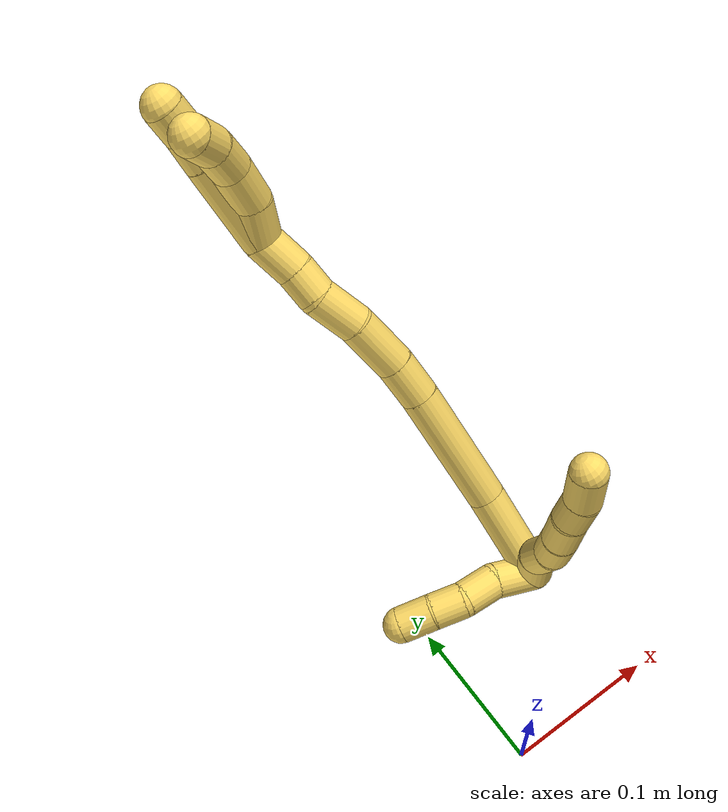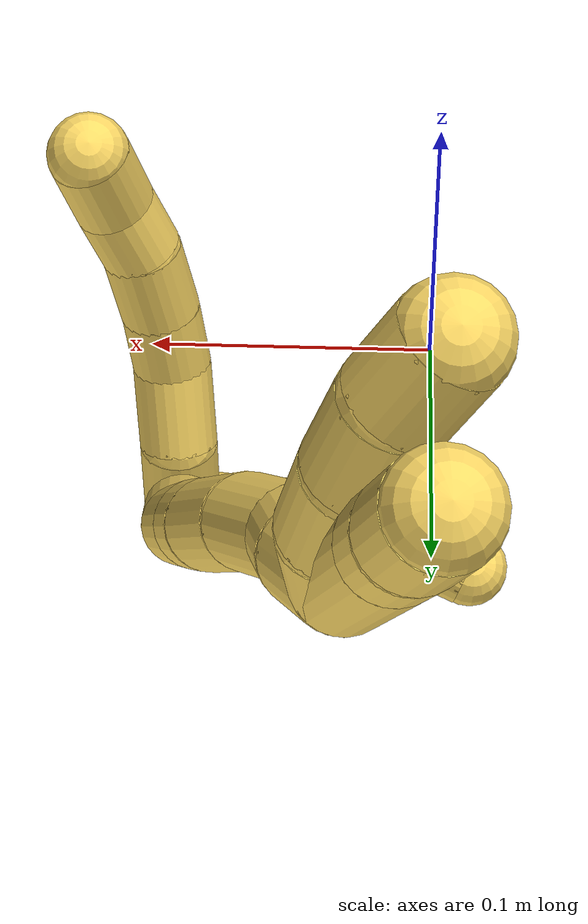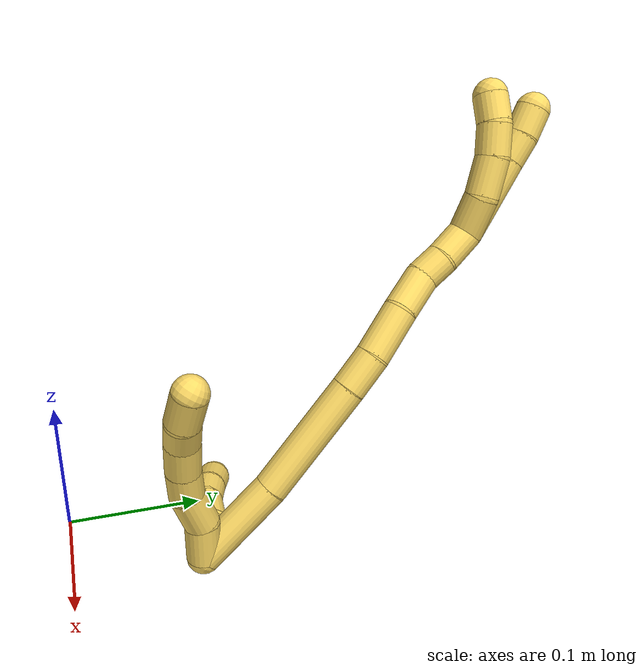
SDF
<sdf version="1.7">
 <world name="default">
  <model name="5">
   <static>0</static>
   <link name="5">
    <collision name="collision-cylinder-e_1_2_8">
     <pose>-0.001596 -0.008565 0.012021 0.619062 -0.107746 -0.034488</pose>
     <geometry><cylinder><radius>0.0125</radius><length>0.029692</length></cylinder></geometry>
     <surface>
      <friction><ode><mu>1.16</mu><mu2>1.16</mu2><slip1>0</slip1><slip2>0</slip2></ode></friction>
      <contact><ode><kp>1e+06</kp><kd>1</kd><max_vel>0</max_vel><min_depth>0.001</min_depth></ode></contact>
     </surface>
    </collision>
    <visual name="visual-cylinder-e_1_2_8">
     <pose>-0.001596 -0.008565 0.012021 0.619062 -0.107746 -0.034488</pose>
     <geometry><cylinder><radius>0.0125</radius><length>0.029692</length></cylinder></geometry>
     <material><ambient>1 0.858824 0.4 1</ambient></material>
    </visual>
    <collision name="collision-cylinder-e_2_8_9">
     <pose>-0.005509 -0.028623 0.032038 0.962921 -0.163912 -0.085779</pose>
     <geometry><cylinder><radius>0.0125</radius><length>0.028383</length></cylinder></geometry>
     <surface>
      <friction><ode><mu>1.16</mu><mu2>1.16</mu2><slip1>0</slip1><slip2>0</slip2></ode></friction>
      <contact><ode><kp>1e+06</kp><kd>1</kd><max_vel>0</max_vel><min_depth>0.001</min_depth></ode></contact>
     </surface>
    </collision>
    <visual name="visual-cylinder-e_2_8_9">
     <pose>-0.005509 -0.028623 0.032038 0.962921 -0.163912 -0.085779</pose>
     <geometry><cylinder><radius>0.0125</radius><length>0.028383</length></cylinder></geometry>
     <material><ambient>1 0.858824 0.4 1</ambient></material>
    </visual>
    <collision name="collision-cylinder-e_3_9_10">
     <pose>-0.007985 -0.047428 0.048331 0.722378 -0.014465 -0.005464</pose>
     <geometry><cylinder><radius>0.0125</radius><length>0.02212</length></cylinder></geometry>
     <surface>
      <friction><ode><mu>1.16</mu><mu2>1.16</mu2><slip1>0</slip1><slip2>0</slip2></ode></friction>
      <contact><ode><kp>1e+06</kp><kd>1</kd><max_vel>0</max_vel><min_depth>0.001</min_depth></ode></contact>
     </surface>
    </collision>
    <visual name="visual-cylinder-e_3_9_10">
     <pose>-0.007985 -0.047428 0.048331 0.722378 -0.014465 -0.005464</pose>
     <geometry><cylinder><radius>0.0125</radius><length>0.02212</length></cylinder></geometry>
     <material><ambient>1 0.858824 0.4 1</ambient></material>
    </visual>
    <collision name="collision-cylinder-e_4_10_11">
     <pose>-0.007289 -0.062668 0.066471 0.678105 0.067615 0.023854</pose>
     <geometry><cylinder><radius>0.0125</radius><length>0.025336</length></cylinder></geometry>
     <surface>
      <friction><ode><mu>1.16</mu><mu2>1.16</mu2><slip1>0</slip1><slip2>0</slip2></ode></friction>
      <contact><ode><kp>1e+06</kp><kd>1</kd><max_vel>0</max_vel><min_depth>0.001</min_depth></ode></contact>
     </surface>
    </collision>
    <visual name="visual-cylinder-e_4_10_11">
     <pose>-0.007289 -0.062668 0.066471 0.678105 0.067615 0.023854</pose>
     <geometry><cylinder><radius>0.0125</radius><length>0.025336</length></cylinder></geometry>
     <material><ambient>1 0.858824 0.4 1</ambient></material>
    </visual>
    <collision name="collision-cylinder-e_5_11_12">
     <pose>-0.004056 -0.077071 0.083575 0.728094 0.239629 0.091681</pose>
     <geometry><cylinder><radius>0.0125</radius><length>0.020029</length></cylinder></geometry>
     <surface>
      <friction><ode><mu>1.16</mu><mu2>1.16</mu2><slip1>0</slip1><slip2>0</slip2></ode></friction>
      <contact><ode><kp>1e+06</kp><kd>1</kd><max_vel>0</max_vel><min_depth>0.001</min_depth></ode></contact>
     </surface>
    </collision>
    <visual name="visual-cylinder-e_5_11_12">
     <pose>-0.004056 -0.077071 0.083575 0.728094 0.239629 0.091681</pose>
     <geometry><cylinder><radius>0.0125</radius><length>0.020029</length></cylinder></geometry>
     <material><ambient>1 0.858824 0.4 1</ambient></material>
    </visual>
    <collision name="collision-cylinder-e_6_12_6">
     <pose>0.000642 -0.089253 0.101389 0.495898 0.191106 0.048518</pose>
     <geometry><cylinder><radius>0.0125</radius><length>0.02444</length></cylinder></geometry>
     <surface>
      <friction><ode><mu>1.16</mu><mu2>1.16</mu2><slip1>0</slip1><slip2>0</slip2></ode></friction>
      <contact><ode><kp>1e+06</kp><kd>1</kd><max_vel>0</max_vel><min_depth>0.001</min_depth></ode></contact>
     </surface>
    </collision>
    <visual name="visual-cylinder-e_6_12_6">
     <pose>0.000642 -0.089253 0.101389 0.495898 0.191106 0.048518</pose>
     <geometry><cylinder><radius>0.0125</radius><length>0.02444</length></cylinder></geometry>
     <material><ambient>1 0.858824 0.4 1</ambient></material>
    </visual>
    <collision name="collision-cylinder-e_1_2_13">
     <pose>-0.011824 0.006546 0.006896 -0.759363 -0.893511 0.377774</pose>
     <geometry><cylinder><radius>0.0125</radius><length>0.030347</length></cylinder></geometry>
     <surface>
      <friction><ode><mu>1.16</mu><mu2>1.16</mu2><slip1>0</slip1><slip2>0</slip2></ode></friction>
      <contact><ode><kp>1e+06</kp><kd>1</kd><max_vel>0</max_vel><min_depth>0.001</min_depth></ode></contact>
     </surface>
    </collision>
    <visual name="visual-cylinder-e_1_2_13">
     <pose>-0.011824 0.006546 0.006896 -0.759363 -0.893511 0.377774</pose>
     <geometry><cylinder><radius>0.0125</radius><length>0.030347</length></cylinder></geometry>
     <material><ambient>1 0.858824 0.4 1</ambient></material>
    </visual>
    <collision name="collision-cylinder-e_2_13_14">
     <pose>-0.034966 0.017228 0.016246 -1.03524 -1.16908 0.720634</pose>
     <geometry><cylinder><radius>0.0125</radius><length>0.024592</length></cylinder></geometry>
     <surface>
      <friction><ode><mu>1.16</mu><mu2>1.16</mu2><slip1>0</slip1><slip2>0</slip2></ode></friction>
      <contact><ode><kp>1e+06</kp><kd>1</kd><max_vel>0</max_vel><min_depth>0.001</min_depth></ode></contact>
     </surface>
    </collision>
    <visual name="visual-cylinder-e_2_13_14">
     <pose>-0.034966 0.017228 0.016246 -1.03524 -1.16908 0.720634</pose>
     <geometry><cylinder><radius>0.0125</radius><length>0.024592</length></cylinder></geometry>
     <material><ambient>1 0.858824 0.4 1</ambient></material>
    </visual>
    <collision name="collision-cylinder-e_3_14_15">
     <pose>-0.054705 0.028094 0.02052 -1.30675 -0.879194 0.691159</pose>
     <geometry><cylinder><radius>0.0125</radius><length>0.021868</length></cylinder></geometry>
     <surface>
      <friction><ode><mu>1.16</mu><mu2>1.16</mu2><slip1>0</slip1><slip2>0</slip2></ode></friction>
      <contact><ode><kp>1e+06</kp><kd>1</kd><max_vel>0</max_vel><min_depth>0.001</min_depth></ode></contact>
     </surface>
    </collision>
    <visual name="visual-cylinder-e_3_14_15">
     <pose>-0.054705 0.028094 0.02052 -1.30675 -0.879194 0.691159</pose>
     <geometry><cylinder><radius>0.0125</radius><length>0.021868</length></cylinder></geometry>
     <material><ambient>1 0.858824 0.4 1</ambient></material>
    </visual>
    <collision name="collision-cylinder-e_4_15_5">
     <pose>-0.071422 0.042898 0.023045 -1.4837 -0.797183 0.736696</pose>
     <geometry><cylinder><radius>0.0125</radius><length>0.023193</length></cylinder></geometry>
     <surface>
      <friction><ode><mu>1.16</mu><mu2>1.16</mu2><slip1>0</slip1><slip2>0</slip2></ode></friction>
      <contact><ode><kp>1e+06</kp><kd>1</kd><max_vel>0</max_vel><min_depth>0.001</min_depth></ode></contact>
     </surface>
    </collision>
    <visual name="visual-cylinder-e_4_15_5">
     <pose>-0.071422 0.042898 0.023045 -1.4837 -0.797183 0.736696</pose>
     <geometry><cylinder><radius>0.0125</radius><length>0.023193</length></cylinder></geometry>
     <material><ambient>1 0.858824 0.4 1</ambient></material>
    </visual>
    <collision name="collision-cylinder-e_1_2_16">
     <pose>0.003896 0.006505 0.033113 -0.193965 0.114953 -0.011196</pose>
     <geometry><cylinder><radius>0.0125</radius><length>0.06794</length></cylinder></geometry>
     <surface>
      <friction><ode><mu>1.16</mu><mu2>1.16</mu2><slip1>0</slip1><slip2>0</slip2></ode></friction>
      <contact><ode><kp>1e+06</kp><kd>1</kd><max_vel>0</max_vel><min_depth>0.001</min_depth></ode></contact>
     </surface>
    </collision>
    <visual name="visual-cylinder-e_1_2_16">
     <pose>0.003896 0.006505 0.033113 -0.193965 0.114953 -0.011196</pose>
     <geometry><cylinder><radius>0.0125</radius><length>0.06794</length></cylinder></geometry>
     <material><ambient>1 0.858824 0.4 1</ambient></material>
    </visual>
    <collision name="collision-cylinder-e_2_16_17">
     <pose>0.009224 0.018414 0.110243 -0.122186 0.032269 -0.001974</pose>
     <geometry><cylinder><radius>0.0125</radius><length>0.08874</length></cylinder></geometry>
     <surface>
      <friction><ode><mu>1.16</mu><mu2>1.16</mu2><slip1>0</slip1><slip2>0</slip2></ode></friction>
      <contact><ode><kp>1e+06</kp><kd>1</kd><max_vel>0</max_vel><min_depth>0.001</min_depth></ode></contact>
     </surface>
    </collision>
    <visual name="visual-cylinder-e_2_16_17">
     <pose>0.009224 0.018414 0.110243 -0.122186 0.032269 -0.001974</pose>
     <geometry><cylinder><radius>0.0125</radius><length>0.08874</length></cylinder></geometry>
     <material><ambient>1 0.858824 0.4 1</ambient></material>
    </visual>
    <collision name="collision-cylinder-e_3_17_18">
     <pose>0.010401 0.02587 0.168322 -0.1448 -0.017921 0.0013</pose>
     <geometry><cylinder><radius>0.0125</radius><length>0.028428</length></cylinder></geometry>
     <surface>
      <friction><ode><mu>1.16</mu><mu2>1.16</mu2><slip1>0</slip1><slip2>0</slip2></ode></friction>
      <contact><ode><kp>1e+06</kp><kd>1</kd><max_vel>0</max_vel><min_depth>0.001</min_depth></ode></contact>
     </surface>
    </collision>
    <visual name="visual-cylinder-e_3_17_18">
     <pose>0.010401 0.02587 0.168322 -0.1448 -0.017921 0.0013</pose>
     <geometry><cylinder><radius>0.0125</radius><length>0.028428</length></cylinder></geometry>
     <material><ambient>1 0.858824 0.4 1</ambient></material>
    </visual>
    <collision name="collision-cylinder-e_4_18_19">
     <pose>0.007438 0.03092 0.200857 -0.160984 -0.143725 0.011614</pose>
     <geometry><cylinder><radius>0.0125</radius><length>0.037816</length></cylinder></geometry>
     <surface>
      <friction><ode><mu>1.16</mu><mu2>1.16</mu2><slip1>0</slip1><slip2>0</slip2></ode></friction>
      <contact><ode><kp>1e+06</kp><kd>1</kd><max_vel>0</max_vel><min_depth>0.001</min_depth></ode></contact>
     </surface>
    </collision>
    <visual name="visual-cylinder-e_4_18_19">
     <pose>0.007438 0.03092 0.200857 -0.160984 -0.143725 0.011614</pose>
     <geometry><cylinder><radius>0.0125</radius><length>0.037816</length></cylinder></geometry>
     <material><ambient>1 0.858824 0.4 1</ambient></material>
    </visual>
    <collision name="collision-cylinder-e_5_19_20">
     <pose>0.001291 0.038597 0.233291 -0.323241 -0.229447 0.03757</pose>
     <geometry><cylinder><radius>0.0125</radius><length>0.030244</length></cylinder></geometry>
     <surface>
      <friction><ode><mu>1.16</mu><mu2>1.16</mu2><slip1>0</slip1><slip2>0</slip2></ode></friction>
      <contact><ode><kp>1e+06</kp><kd>1</kd><max_vel>0</max_vel><min_depth>0.001</min_depth></ode></contact>
     </surface>
    </collision>
    <visual name="visual-cylinder-e_5_19_20">
     <pose>0.001291 0.038597 0.233291 -0.323241 -0.229447 0.03757</pose>
     <geometry><cylinder><radius>0.0125</radius><length>0.030244</length></cylinder></geometry>
     <material><ambient>1 0.858824 0.4 1</ambient></material>
    </visual>
    <collision name="collision-cylinder-e_6_20_21">
     <pose>-0.001536 0.046718 0.256766 -0.347358 0.06048 -0.010614</pose>
     <geometry><cylinder><radius>0.0125</radius><length>0.020268</length></cylinder></geometry>
     <surface>
      <friction><ode><mu>1.16</mu><mu2>1.16</mu2><slip1>0</slip1><slip2>0</slip2></ode></friction>
      <contact><ode><kp>1e+06</kp><kd>1</kd><max_vel>0</max_vel><min_depth>0.001</min_depth></ode></contact>
     </surface>
    </collision>
    <visual name="visual-cylinder-e_6_20_21">
     <pose>-0.001536 0.046718 0.256766 -0.347358 0.06048 -0.010614</pose>
     <geometry><cylinder><radius>0.0125</radius><length>0.020268</length></cylinder></geometry>
     <material><ambient>1 0.858824 0.4 1</ambient></material>
    </visual>
    <collision name="collision-cylinder-e_7_21_1">
     <pose>-0.002061 0.055041 0.278577 -0.377669 -0.085751 0.016398</pose>
     <geometry><cylinder><radius>0.0125</radius><length>0.026563</length></cylinder></geometry>
     <surface>
      <friction><ode><mu>1.16</mu><mu2>1.16</mu2><slip1>0</slip1><slip2>0</slip2></ode></friction>
      <contact><ode><kp>1e+06</kp><kd>1</kd><max_vel>0</max_vel><min_depth>0.001</min_depth></ode></contact>
     </surface>
    </collision>
    <visual name="visual-cylinder-e_7_21_1">
     <pose>-0.002061 0.055041 0.278577 -0.377669 -0.085751 0.016398</pose>
     <geometry><cylinder><radius>0.0125</radius><length>0.026563</length></cylinder></geometry>
     <material><ambient>1 0.858824 0.4 1</ambient></material>
    </visual>
    <collision name="collision-cylinder-e_1_1_22">
     <pose>-0.005117 0.060244 0.320455 -0.010923 -0.064754 0.000354</pose>
     <geometry><cylinder><radius>0.0125</radius><length>0.059285</length></cylinder></geometry>
     <surface>
      <friction><ode><mu>1.16</mu><mu2>1.16</mu2><slip1>0</slip1><slip2>0</slip2></ode></friction>
      <contact><ode><kp>1e+06</kp><kd>1</kd><max_vel>0</max_vel><min_depth>0.001</min_depth></ode></contact>
     </surface>
    </collision>
    <visual name="visual-cylinder-e_1_1_22">
     <pose>-0.005117 0.060244 0.320455 -0.010923 -0.064754 0.000354</pose>
     <geometry><cylinder><radius>0.0125</radius><length>0.059285</length></cylinder></geometry>
     <material><ambient>1 0.858824 0.4 1</ambient></material>
    </visual>
    <collision name="collision-cylinder-e_2_22_23">
     <pose>-0.00748 0.060728 0.360164 -0.015899 -0.043897 0.000349</pose>
     <geometry><cylinder><radius>0.0125</radius><length>0.020282</length></cylinder></geometry>
     <surface>
      <friction><ode><mu>1.16</mu><mu2>1.16</mu2><slip1>0</slip1><slip2>0</slip2></ode></friction>
      <contact><ode><kp>1e+06</kp><kd>1</kd><max_vel>0</max_vel><min_depth>0.001</min_depth></ode></contact>
     </surface>
    </collision>
    <visual name="visual-cylinder-e_2_22_23">
     <pose>-0.00748 0.060728 0.360164 -0.015899 -0.043897 0.000349</pose>
     <geometry><cylinder><radius>0.0125</radius><length>0.020282</length></cylinder></geometry>
     <material><ambient>1 0.858824 0.4 1</ambient></material>
    </visual>
    <collision name="collision-cylinder-e_3_23_4">
     <pose>-0.009533 0.060536 0.380377 0.034983 -0.158074 -0.002771</pose>
     <geometry><cylinder><radius>0.0125</radius><length>0.020433</length></cylinder></geometry>
     <surface>
      <friction><ode><mu>1.16</mu><mu2>1.16</mu2><slip1>0</slip1><slip2>0</slip2></ode></friction>
      <contact><ode><kp>1e+06</kp><kd>1</kd><max_vel>0</max_vel><min_depth>0.001</min_depth></ode></contact>
     </surface>
    </collision>
    <visual name="visual-cylinder-e_3_23_4">
     <pose>-0.009533 0.060536 0.380377 0.034983 -0.158074 -0.002771</pose>
     <geometry><cylinder><radius>0.0125</radius><length>0.020433</length></cylinder></geometry>
     <material><ambient>1 0.858824 0.4 1</ambient></material>
    </visual>
    <collision name="collision-cylinder-e_1_1_24">
     <pose>-0.002005 0.055248 0.304332 0.33429 0.083584 0.01411</pose>
     <geometry><cylinder><radius>0.0125</radius><length>0.028587</length></cylinder></geometry>
     <surface>
      <friction><ode><mu>1.16</mu><mu2>1.16</mu2><slip1>0</slip1><slip2>0</slip2></ode></friction>
      <contact><ode><kp>1e+06</kp><kd>1</kd><max_vel>0</max_vel><min_depth>0.001</min_depth></ode></contact>
     </surface>
    </collision>
    <visual name="visual-cylinder-e_1_1_24">
     <pose>-0.002005 0.055248 0.304332 0.33429 0.083584 0.01411</pose>
     <geometry><cylinder><radius>0.0125</radius><length>0.028587</length></cylinder></geometry>
     <material><ambient>1 0.858824 0.4 1</ambient></material>
    </visual>
    <collision name="collision-cylinder-e_2_24_25">
     <pose>-0.003378 0.047054 0.331204 0.256585 -0.182894 -0.023658</pose>
     <geometry><cylinder><radius>0.0125</radius><length>0.028213</length></cylinder></geometry>
     <surface>
      <friction><ode><mu>1.16</mu><mu2>1.16</mu2><slip1>0</slip1><slip2>0</slip2></ode></friction>
      <contact><ode><kp>1e+06</kp><kd>1</kd><max_vel>0</max_vel><min_depth>0.001</min_depth></ode></contact>
     </surface>
    </collision>
    <visual name="visual-cylinder-e_2_24_25">
     <pose>-0.003378 0.047054 0.331204 0.256585 -0.182894 -0.023658</pose>
     <geometry><cylinder><radius>0.0125</radius><length>0.028213</length></cylinder></geometry>
     <material><ambient>1 0.858824 0.4 1</ambient></material>
    </visual>
    <collision name="collision-cylinder-e_3_25_26">
     <pose>-0.009953 0.039586 0.354682 0.373954 -0.35526 -0.0679</pose>
     <geometry><cylinder><radius>0.0125</radius><length>0.023055</length></cylinder></geometry>
     <surface>
      <friction><ode><mu>1.16</mu><mu2>1.16</mu2><slip1>0</slip1><slip2>0</slip2></ode></friction>
      <contact><ode><kp>1e+06</kp><kd>1</kd><max_vel>0</max_vel><min_depth>0.001</min_depth></ode></contact>
     </surface>
    </collision>
    <visual name="visual-cylinder-e_3_25_26">
     <pose>-0.009953 0.039586 0.354682 0.373954 -0.35526 -0.0679</pose>
     <geometry><cylinder><radius>0.0125</radius><length>0.023055</length></cylinder></geometry>
     <material><ambient>1 0.858824 0.4 1</ambient></material>
    </visual>
    <collision name="collision-cylinder-e_4_26_3">
     <pose>-0.019732 0.032538 0.372395 0.384923 -0.609926 -0.122532</pose>
     <geometry><cylinder><radius>0.0125</radius><length>0.020145</length></cylinder></geometry>
     <surface>
      <friction><ode><mu>1.16</mu><mu2>1.16</mu2><slip1>0</slip1><slip2>0</slip2></ode></friction>
      <contact><ode><kp>1e+06</kp><kd>1</kd><max_vel>0</max_vel><min_depth>0.001</min_depth></ode></contact>
     </surface>
    </collision>
    <visual name="visual-cylinder-e_4_26_3">
     <pose>-0.019732 0.032538 0.372395 0.384923 -0.609926 -0.122532</pose>
     <geometry><cylinder><radius>0.0125</radius><length>0.020145</length></cylinder></geometry>
     <material><ambient>1 0.858824 0.4 1</ambient></material>
    </visual>
    <collision name="collision-sphere-3">
     <pose>-0.025502 0.029437 0.380047 0 -0 0</pose>
     <geometry><sphere><radius>0.0125</radius></sphere></geometry>
     <surface>
      <friction><ode><mu>1.16</mu><mu2>1.16</mu2><slip1>0</slip1><slip2>0</slip2></ode></friction>
      <contact><ode><kp>1e+06</kp><kd>1</kd><max_vel>0</max_vel><min_depth>0.001</min_depth></ode></contact>
     </surface>
    </collision>
    <visual name="visual-sphere-3">
     <pose>-0.025502 0.029437 0.380047 0 -0 0</pose>
     <geometry><sphere><radius>0.0125</radius></sphere></geometry>
     <material><ambient>1 0.858824 0.4 1</ambient></material>
    </visual>
    <collision name="collision-sphere-26">
     <pose>-0.013963 0.035638 0.364743 0 -0 0</pose>
     <geometry><sphere><radius>0.0125</radius></sphere></geometry>
     <surface>
      <friction><ode><mu>1.16</mu><mu2>1.16</mu2><slip1>0</slip1><slip2>0</slip2></ode></friction>
      <contact><ode><kp>1e+06</kp><kd>1</kd><max_vel>0</max_vel><min_depth>0.001</min_depth></ode></contact>
     </surface>
    </collision>
    <visual name="visual-sphere-26">
     <pose>-0.013963 0.035638 0.364743 0 -0 0</pose>
     <geometry><sphere><radius>0.0125</radius></sphere></geometry>
     <material><ambient>1 0.858824 0.4 1</ambient></material>
    </visual>
    <collision name="collision-sphere-25">
     <pose>-0.005944 0.043534 0.344621 0 -0 0</pose>
     <geometry><sphere><radius>0.0125</radius></sphere></geometry>
     <surface>
      <friction><ode><mu>1.16</mu><mu2>1.16</mu2><slip1>0</slip1><slip2>0</slip2></ode></friction>
      <contact><ode><kp>1e+06</kp><kd>1</kd><max_vel>0</max_vel><min_depth>0.001</min_depth></ode></contact>
     </surface>
    </collision>
    <visual name="visual-sphere-25">
     <pose>-0.005944 0.043534 0.344621 0 -0 0</pose>
     <geometry><sphere><radius>0.0125</radius></sphere></geometry>
     <material><ambient>1 0.858824 0.4 1</ambient></material>
    </visual>
    <collision name="collision-sphere-24">
     <pose>-0.000812 0.050574 0.317787 0 -0 0</pose>
     <geometry><sphere><radius>0.0125</radius></sphere></geometry>
     <surface>
      <friction><ode><mu>1.16</mu><mu2>1.16</mu2><slip1>0</slip1><slip2>0</slip2></ode></friction>
      <contact><ode><kp>1e+06</kp><kd>1</kd><max_vel>0</max_vel><min_depth>0.001</min_depth></ode></contact>
     </surface>
    </collision>
    <visual name="visual-sphere-24">
     <pose>-0.000812 0.050574 0.317787 0 -0 0</pose>
     <geometry><sphere><radius>0.0125</radius></sphere></geometry>
     <material><ambient>1 0.858824 0.4 1</ambient></material>
    </visual>
    <collision name="collision-sphere-4">
     <pose>-0.011141 0.060183 0.39046 0 -0 0</pose>
     <geometry><sphere><radius>0.0125</radius></sphere></geometry>
     <surface>
      <friction><ode><mu>1.16</mu><mu2>1.16</mu2><slip1>0</slip1><slip2>0</slip2></ode></friction>
      <contact><ode><kp>1e+06</kp><kd>1</kd><max_vel>0</max_vel><min_depth>0.001</min_depth></ode></contact>
     </surface>
    </collision>
    <visual name="visual-sphere-4">
     <pose>-0.011141 0.060183 0.39046 0 -0 0</pose>
     <geometry><sphere><radius>0.0125</radius></sphere></geometry>
     <material><ambient>1 0.858824 0.4 1</ambient></material>
    </visual>
    <collision name="collision-sphere-23">
     <pose>-0.007925 0.060889 0.370294 0 -0 0</pose>
     <geometry><sphere><radius>0.0125</radius></sphere></geometry>
     <surface>
      <friction><ode><mu>1.16</mu><mu2>1.16</mu2><slip1>0</slip1><slip2>0</slip2></ode></friction>
      <contact><ode><kp>1e+06</kp><kd>1</kd><max_vel>0</max_vel><min_depth>0.001</min_depth></ode></contact>
     </surface>
    </collision>
    <visual name="visual-sphere-23">
     <pose>-0.007925 0.060889 0.370294 0 -0 0</pose>
     <geometry><sphere><radius>0.0125</radius></sphere></geometry>
     <material><ambient>1 0.858824 0.4 1</ambient></material>
    </visual>
    <collision name="collision-sphere-22">
     <pose>-0.007035 0.060567 0.350034 0 -0 0</pose>
     <geometry><sphere><radius>0.0125</radius></sphere></geometry>
     <surface>
      <friction><ode><mu>1.16</mu><mu2>1.16</mu2><slip1>0</slip1><slip2>0</slip2></ode></friction>
      <contact><ode><kp>1e+06</kp><kd>1</kd><max_vel>0</max_vel><min_depth>0.001</min_depth></ode></contact>
     </surface>
    </collision>
    <visual name="visual-sphere-22">
     <pose>-0.007035 0.060567 0.350034 0 -0 0</pose>
     <geometry><sphere><radius>0.0125</radius></sphere></geometry>
     <material><ambient>1 0.858824 0.4 1</ambient></material>
    </visual>
    <collision name="collision-sphere-1">
     <pose>-0.003199 0.059921 0.290877 0 -0 0</pose>
     <geometry><sphere><radius>0.0125</radius></sphere></geometry>
     <surface>
      <friction><ode><mu>1.16</mu><mu2>1.16</mu2><slip1>0</slip1><slip2>0</slip2></ode></friction>
      <contact><ode><kp>1e+06</kp><kd>1</kd><max_vel>0</max_vel><min_depth>0.001</min_depth></ode></contact>
     </surface>
    </collision>
    <visual name="visual-sphere-1">
     <pose>-0.003199 0.059921 0.290877 0 -0 0</pose>
     <geometry><sphere><radius>0.0125</radius></sphere></geometry>
     <material><ambient>1 0.858824 0.4 1</ambient></material>
    </visual>
    <collision name="collision-sphere-21">
     <pose>-0.000924 0.050162 0.266277 0 -0 0</pose>
     <geometry><sphere><radius>0.0125</radius></sphere></geometry>
     <surface>
      <friction><ode><mu>1.16</mu><mu2>1.16</mu2><slip1>0</slip1><slip2>0</slip2></ode></friction>
      <contact><ode><kp>1e+06</kp><kd>1</kd><max_vel>0</max_vel><min_depth>0.001</min_depth></ode></contact>
     </surface>
    </collision>
    <visual name="visual-sphere-21">
     <pose>-0.000924 0.050162 0.266277 0 -0 0</pose>
     <geometry><sphere><radius>0.0125</radius></sphere></geometry>
     <material><ambient>1 0.858824 0.4 1</ambient></material>
    </visual>
    <collision name="collision-sphere-12">
     <pose>-0.001679 -0.083544 0.090837 0 -0 0</pose>
     <geometry><sphere><radius>0.0125</radius></sphere></geometry>
     <surface>
      <friction><ode><mu>1.16</mu><mu2>1.16</mu2><slip1>0</slip1><slip2>0</slip2></ode></friction>
      <contact><ode><kp>1e+06</kp><kd>1</kd><max_vel>0</max_vel><min_depth>0.001</min_depth></ode></contact>
     </surface>
    </collision>
    <visual name="visual-sphere-12">
     <pose>-0.001679 -0.083544 0.090837 0 -0 0</pose>
     <geometry><sphere><radius>0.0125</radius></sphere></geometry>
     <material><ambient>1 0.858824 0.4 1</ambient></material>
    </visual>
    <collision name="collision-sphere-11">
     <pose>-0.006433 -0.070597 0.076314 0 -0 0</pose>
     <geometry><sphere><radius>0.0125</radius></sphere></geometry>
     <surface>
      <friction><ode><mu>1.16</mu><mu2>1.16</mu2><slip1>0</slip1><slip2>0</slip2></ode></friction>
      <contact><ode><kp>1e+06</kp><kd>1</kd><max_vel>0</max_vel><min_depth>0.001</min_depth></ode></contact>
     </surface>
    </collision>
    <visual name="visual-sphere-11">
     <pose>-0.006433 -0.070597 0.076314 0 -0 0</pose>
     <geometry><sphere><radius>0.0125</radius></sphere></geometry>
     <material><ambient>1 0.858824 0.4 1</ambient></material>
    </visual>
    <collision name="collision-sphere-10">
     <pose>-0.008145 -0.054739 0.056628 0 -0 0</pose>
     <geometry><sphere><radius>0.0125</radius></sphere></geometry>
     <surface>
      <friction><ode><mu>1.16</mu><mu2>1.16</mu2><slip1>0</slip1><slip2>0</slip2></ode></friction>
      <contact><ode><kp>1e+06</kp><kd>1</kd><max_vel>0</max_vel><min_depth>0.001</min_depth></ode></contact>
     </surface>
    </collision>
    <visual name="visual-sphere-10">
     <pose>-0.008145 -0.054739 0.056628 0 -0 0</pose>
     <geometry><sphere><radius>0.0125</radius></sphere></geometry>
     <material><ambient>1 0.858824 0.4 1</ambient></material>
    </visual>
    <collision name="collision-sphere-9">
     <pose>-0.007825 -0.040116 0.040035 0 -0 0</pose>
     <geometry><sphere><radius>0.0125</radius></sphere></geometry>
     <surface>
      <friction><ode><mu>1.16</mu><mu2>1.16</mu2><slip1>0</slip1><slip2>0</slip2></ode></friction>
      <contact><ode><kp>1e+06</kp><kd>1</kd><max_vel>0</max_vel><min_depth>0.001</min_depth></ode></contact>
     </surface>
    </collision>
    <visual name="visual-sphere-9">
     <pose>-0.007825 -0.040116 0.040035 0 -0 0</pose>
     <geometry><sphere><radius>0.0125</radius></sphere></geometry>
     <material><ambient>1 0.858824 0.4 1</ambient></material>
    </visual>
    <collision name="collision-sphere-2">
     <geometry><sphere><radius>0.0125</radius></sphere></geometry>
     <surface>
      <friction><ode><mu>1.16</mu><mu2>1.16</mu2><slip1>0</slip1><slip2>0</slip2></ode></friction>
      <contact><ode><kp>1e+06</kp><kd>1</kd><max_vel>0</max_vel><min_depth>0.001</min_depth></ode></contact>
     </surface>
    </collision>
    <visual name="visual-sphere-2">
     <geometry><sphere><radius>0.0125</radius></sphere></geometry>
     <material><ambient>1 0.858824 0.4 1</ambient></material>
    </visual>
    <collision name="collision-sphere-19">
     <pose>0.00473 0.03392 0.219328 0 -0 0</pose>
     <geometry><sphere><radius>0.0125</radius></sphere></geometry>
     <surface>
      <friction><ode><mu>1.16</mu><mu2>1.16</mu2><slip1>0</slip1><slip2>0</slip2></ode></friction>
      <contact><ode><kp>1e+06</kp><kd>1</kd><max_vel>0</max_vel><min_depth>0.001</min_depth></ode></contact>
     </surface>
    </collision>
    <visual name="visual-sphere-19">
     <pose>0.00473 0.03392 0.219328 0 -0 0</pose>
     <geometry><sphere><radius>0.0125</radius></sphere></geometry>
     <material><ambient>1 0.858824 0.4 1</ambient></material>
    </visual>
    <collision name="collision-sphere-8">
     <pose>-0.003193 -0.017129 0.024042 0 -0 0</pose>
     <geometry><sphere><radius>0.0125</radius></sphere></geometry>
     <surface>
      <friction><ode><mu>1.16</mu><mu2>1.16</mu2><slip1>0</slip1><slip2>0</slip2></ode></friction>
      <contact><ode><kp>1e+06</kp><kd>1</kd><max_vel>0</max_vel><min_depth>0.001</min_depth></ode></contact>
     </surface>
    </collision>
    <visual name="visual-sphere-8">
     <pose>-0.003193 -0.017129 0.024042 0 -0 0</pose>
     <geometry><sphere><radius>0.0125</radius></sphere></geometry>
     <material><ambient>1 0.858824 0.4 1</ambient></material>
    </visual>
    <collision name="collision-sphere-6">
     <pose>0.002963 -0.094962 0.111942 0 -0 0</pose>
     <geometry><sphere><radius>0.0125</radius></sphere></geometry>
     <surface>
      <friction><ode><mu>1.16</mu><mu2>1.16</mu2><slip1>0</slip1><slip2>0</slip2></ode></friction>
      <contact><ode><kp>1e+06</kp><kd>1</kd><max_vel>0</max_vel><min_depth>0.001</min_depth></ode></contact>
     </surface>
    </collision>
    <visual name="visual-sphere-6">
     <pose>0.002963 -0.094962 0.111942 0 -0 0</pose>
     <geometry><sphere><radius>0.0125</radius></sphere></geometry>
     <material><ambient>1 0.858824 0.4 1</ambient></material>
    </visual>
    <collision name="collision-sphere-13">
     <pose>-0.023648 0.013093 0.013793 0 -0 0</pose>
     <geometry><sphere><radius>0.0125</radius></sphere></geometry>
     <surface>
      <friction><ode><mu>1.16</mu><mu2>1.16</mu2><slip1>0</slip1><slip2>0</slip2></ode></friction>
      <contact><ode><kp>1e+06</kp><kd>1</kd><max_vel>0</max_vel><min_depth>0.001</min_depth></ode></contact>
     </surface>
    </collision>
    <visual name="visual-sphere-13">
     <pose>-0.023648 0.013093 0.013793 0 -0 0</pose>
     <geometry><sphere><radius>0.0125</radius></sphere></geometry>
     <material><ambient>1 0.858824 0.4 1</ambient></material>
    </visual>
    <collision name="collision-sphere-14">
     <pose>-0.046283 0.021362 0.0187 0 -0 0</pose>
     <geometry><sphere><radius>0.0125</radius></sphere></geometry>
     <surface>
      <friction><ode><mu>1.16</mu><mu2>1.16</mu2><slip1>0</slip1><slip2>0</slip2></ode></friction>
      <contact><ode><kp>1e+06</kp><kd>1</kd><max_vel>0</max_vel><min_depth>0.001</min_depth></ode></contact>
     </surface>
    </collision>
    <visual name="visual-sphere-14">
     <pose>-0.046283 0.021362 0.0187 0 -0 0</pose>
     <geometry><sphere><radius>0.0125</radius></sphere></geometry>
     <material><ambient>1 0.858824 0.4 1</ambient></material>
    </visual>
    <collision name="collision-sphere-15">
     <pose>-0.063127 0.034826 0.02234 0 -0 0</pose>
     <geometry><sphere><radius>0.0125</radius></sphere></geometry>
     <surface>
      <friction><ode><mu>1.16</mu><mu2>1.16</mu2><slip1>0</slip1><slip2>0</slip2></ode></friction>
      <contact><ode><kp>1e+06</kp><kd>1</kd><max_vel>0</max_vel><min_depth>0.001</min_depth></ode></contact>
     </surface>
    </collision>
    <visual name="visual-sphere-15">
     <pose>-0.063127 0.034826 0.02234 0 -0 0</pose>
     <geometry><sphere><radius>0.0125</radius></sphere></geometry>
     <material><ambient>1 0.858824 0.4 1</ambient></material>
    </visual>
    <collision name="collision-sphere-5">
     <pose>-0.079718 0.05097 0.02375 0 -0 0</pose>
     <geometry><sphere><radius>0.0125</radius></sphere></geometry>
     <surface>
      <friction><ode><mu>1.16</mu><mu2>1.16</mu2><slip1>0</slip1><slip2>0</slip2></ode></friction>
      <contact><ode><kp>1e+06</kp><kd>1</kd><max_vel>0</max_vel><min_depth>0.001</min_depth></ode></contact>
     </surface>
    </collision>
    <visual name="visual-sphere-5">
     <pose>-0.079718 0.05097 0.02375 0 -0 0</pose>
     <geometry><sphere><radius>0.0125</radius></sphere></geometry>
     <material><ambient>1 0.858824 0.4 1</ambient></material>
    </visual>
    <collision name="collision-sphere-16">
     <pose>0.007793 0.013009 0.066226 0 -0 0</pose>
     <geometry><sphere><radius>0.0125</radius></sphere></geometry>
     <surface>
      <friction><ode><mu>1.16</mu><mu2>1.16</mu2><slip1>0</slip1><slip2>0</slip2></ode></friction>
      <contact><ode><kp>1e+06</kp><kd>1</kd><max_vel>0</max_vel><min_depth>0.001</min_depth></ode></contact>
     </surface>
    </collision>
    <visual name="visual-sphere-16">
     <pose>0.007793 0.013009 0.066226 0 -0 0</pose>
     <geometry><sphere><radius>0.0125</radius></sphere></geometry>
     <material><ambient>1 0.858824 0.4 1</ambient></material>
    </visual>
    <collision name="collision-sphere-17">
     <pose>0.010656 0.023819 0.154259 0 -0 0</pose>
     <geometry><sphere><radius>0.0125</radius></sphere></geometry>
     <surface>
      <friction><ode><mu>1.16</mu><mu2>1.16</mu2><slip1>0</slip1><slip2>0</slip2></ode></friction>
      <contact><ode><kp>1e+06</kp><kd>1</kd><max_vel>0</max_vel><min_depth>0.001</min_depth></ode></contact>
     </surface>
    </collision>
    <visual name="visual-sphere-17">
     <pose>0.010656 0.023819 0.154259 0 -0 0</pose>
     <geometry><sphere><radius>0.0125</radius></sphere></geometry>
     <material><ambient>1 0.858824 0.4 1</ambient></material>
    </visual>
    <collision name="collision-sphere-18">
     <pose>0.010146 0.027921 0.182385 0 -0 0</pose>
     <geometry><sphere><radius>0.0125</radius></sphere></geometry>
     <surface>
      <friction><ode><mu>1.16</mu><mu2>1.16</mu2><slip1>0</slip1><slip2>0</slip2></ode></friction>
      <contact><ode><kp>1e+06</kp><kd>1</kd><max_vel>0</max_vel><min_depth>0.001</min_depth></ode></contact>
     </surface>
    </collision>
    <visual name="visual-sphere-18">
     <pose>0.010146 0.027921 0.182385 0 -0 0</pose>
     <geometry><sphere><radius>0.0125</radius></sphere></geometry>
     <material><ambient>1 0.858824 0.4 1</ambient></material>
    </visual>
    <collision name="collision-sphere-20">
     <pose>-0.002149 0.043275 0.247254 0 -0 0</pose>
     <geometry><sphere><radius>0.0125</radius></sphere></geometry>
     <surface>
      <friction><ode><mu>1.16</mu><mu2>1.16</mu2><slip1>0</slip1><slip2>0</slip2></ode></friction>
      <contact><ode><kp>1e+06</kp><kd>1</kd><max_vel>0</max_vel><min_depth>0.001</min_depth></ode></contact>
     </surface>
    </collision>
    <visual name="visual-sphere-20">
     <pose>-0.002149 0.043275 0.247254 0 -0 0</pose>
     <geometry><sphere><radius>0.0125</radius></sphere></geometry>
     <material><ambient>1 0.858824 0.4 1</ambient></material>
    </visual>
    <inertial>
     <pose>-0.006024 0.017167 0.16218 0 -0 0</pose>
     <mass>0.75</mass>
     <inertia>
      <ixx>0.000151</ixx>
      <ixy>0</ixy>
      <ixz>0</ixz>
      <iyy>0.000156</iyy>
      <iyz>0</iyz>
      <izz>4.5e-05</izz>
     </inertia>
    </inertial>
   </link>
   <pose>0.082937 0.091002 0.0125 -0.611889 0.122012 0.352502</pose>
  </model>
 </world>
</sdf>
